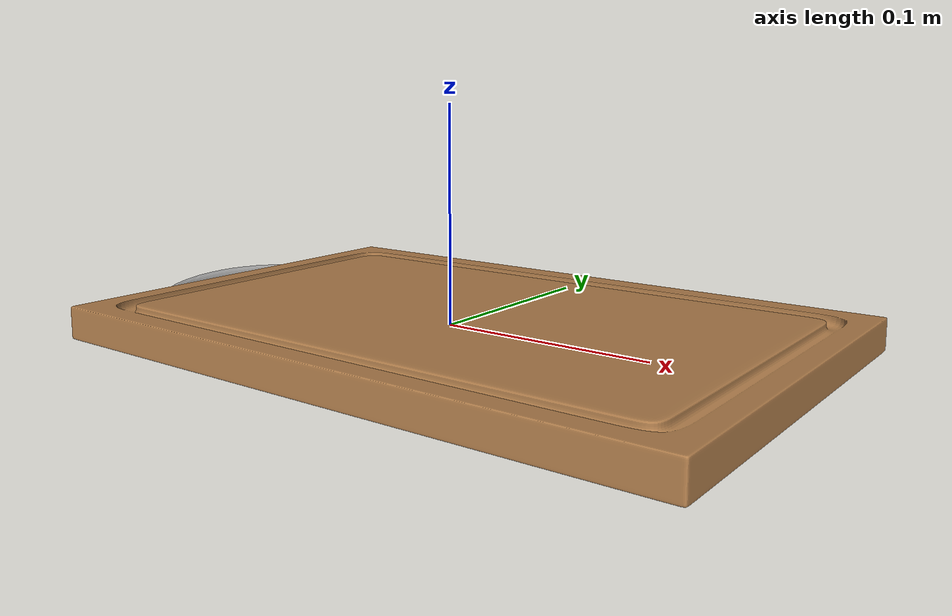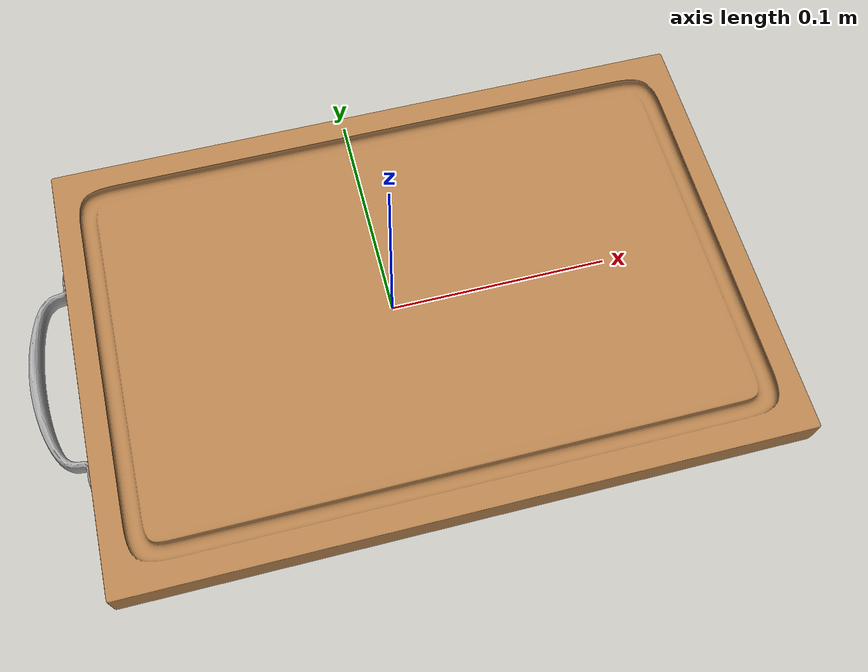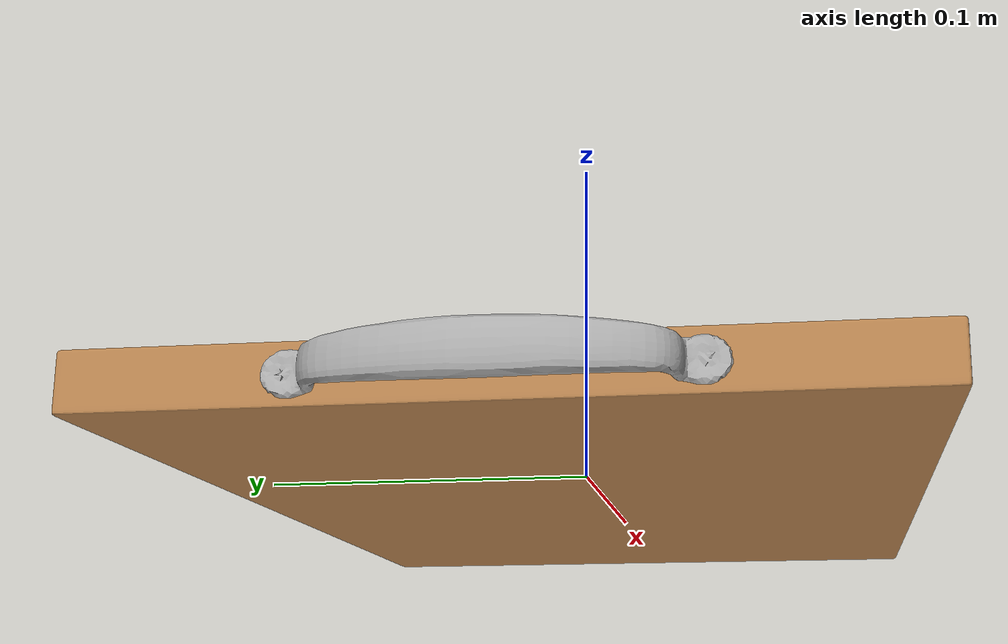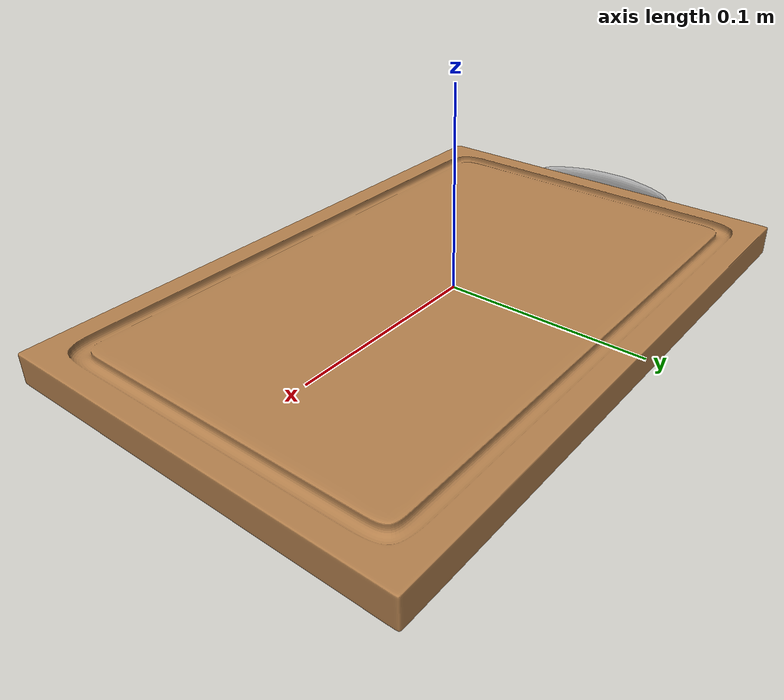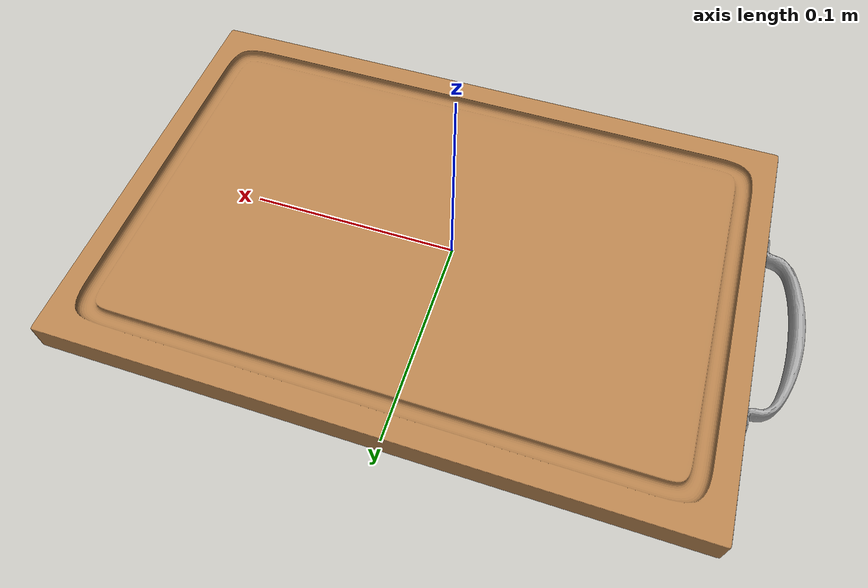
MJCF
<?xml version="1.0" ?>
<mujoco model="cutting_board">
	<compiler angle="radian" meshdir="../meshes/" texturedir="../textures/" autolimits="true" inertiafromgeom="false"/>
	<default>
		<default class="cutting_board_visual">
			<geom contype="0" conaffinity="0"/>
		</default>
		<default class="cutting_board_collision">
			<geom rgba="0.9 0.9 0.9 0.0"/>
		</default>
	</default>
	<asset>
		<mesh name="CuttingBoardMetal" file="stl/CuttingBoardMetal.stl" scale="1.0 1.0 1.0"/>
		<mesh name="CuttingBoardWoodiness" file="obj/CuttingBoardWoodiness.obj" scale="1.0 1.0 1.0"/>
		<material name="M_CuttingBoardMetal" rgba="0.660099983215332 0.660099983215332 0.660099983215332 1.0" emission="0.0"/>
		<material name="M_CuttingBoardWoodiness" texture="T_CuttingBoardWoodiness"/>
		<texture name="T_CuttingBoardWoodiness" type="2d" file="T_CuttingBoardWoodiness.png"/>

		<mesh name="UCX_CuttingBoard_001" file="stl/UCX_CuttingBoard_001.stl" scale="1.0 1.0 1.0"/>
		<mesh name="UCX_CuttingBoard_002" file="stl/UCX_CuttingBoard_002.stl" scale="1.0 1.0 1.0"/>
		<mesh name="UCX_CuttingBoard_003" file="stl/UCX_CuttingBoard_003.stl" scale="1.0 1.0 1.0"/>
		<mesh name="UCX_CuttingBoard_004" file="stl/UCX_CuttingBoard_004.stl" scale="1.0 1.0 1.0"/>
	</asset>
	<worldbody>
		<body name="cutting_board" pos="0.0 0.0 0.0" quat="1.0 0.0 0.0 0.0">
			<freejoint />
			<inertial mass="0.9486618041992188" pos="0.00958931539207697 7.350090163527057e-05 -1.7599102193344152e-06" quat="1.0 -5.373578471079554e-09 -1.7391168512403965e-05 8.688193338457495e-05" diaginertia="0.003260483033955097 0.007564750965684652 0.010788618586957455"/>
			<body name="cutting_board_metal" pos="0.0 0.0 0.0" quat="1.0 0.0 0.0 0.0">
				<geom name="CuttingBoardMetal" type="mesh" pos="0.0 0.0 0.0" quat="1.0 0.0 0.0 0.0" mesh="CuttingBoardMetal" material="M_CuttingBoardMetal" class="cutting_board_visual"/>
				<geom name="UCX_CuttingBoard_001" type="mesh" mesh="UCX_CuttingBoard_001" class="cutting_board_collision"/>
				<geom name="UCX_CuttingBoard_002" type="mesh" mesh="UCX_CuttingBoard_002" class="cutting_board_collision"/>
				<geom name="UCX_CuttingBoard_003" type="mesh" mesh="UCX_CuttingBoard_003" class="cutting_board_collision"/>
			</body>
			<body name="cutting_board_woodiness" pos="0.0 0.0 0.0" quat="1.0 0.0 0.0 0.0">
				<geom name="CuttingBoardWoodiness" type="mesh" pos="0.0 0.0 0.0" quat="1.0 0.0 0.0 0.0" mesh="CuttingBoardWoodiness" material="M_CuttingBoardWoodiness" class="cutting_board_visual"/>
				<geom name="UCX_CuttingBoard_004" type="mesh" mesh="UCX_CuttingBoard_004" class="cutting_board_collision"/>
			</body>
		</body>
	</worldbody>
	<equality/>
</mujoco>
